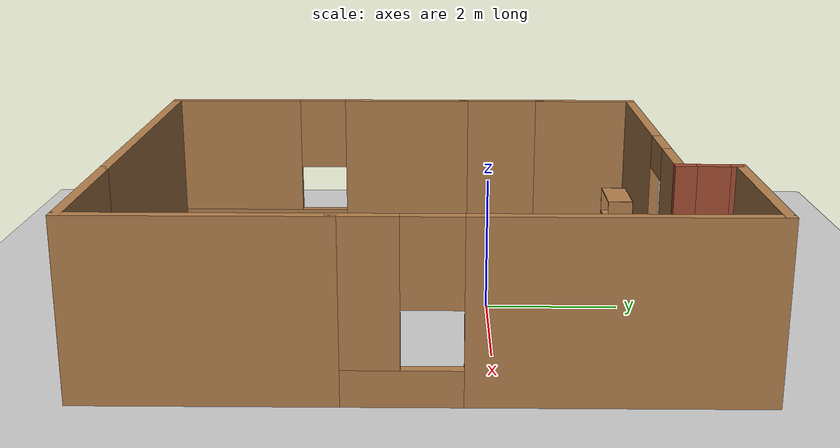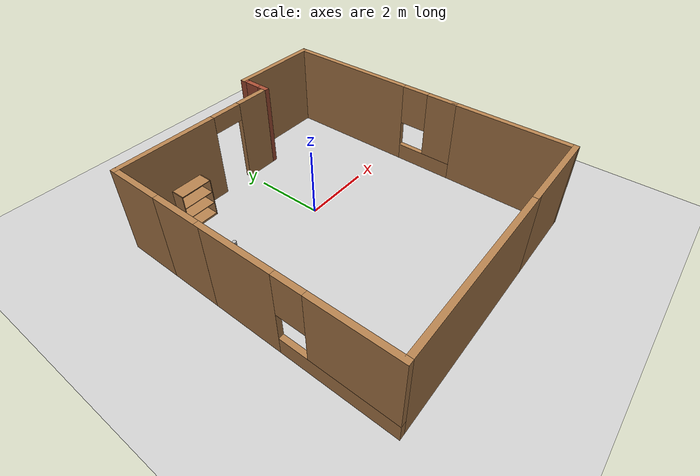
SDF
<sdf version="1.7">
 <world name="default">
  <light name="sun" type="directional">
   <pose>0 0 10 0 -0 0</pose>
   <diffuse>0.8 0.8 0.8 1</diffuse>
   <specular>0.2 0.2 0.2 1</specular>
   <attenuation>
    <range>1000</range>
    <constant>0.9</constant>
    <linear>0.01</linear>
    <quadratic>0.001</quadratic>
   </attenuation>
   <direction>-0.5 0.1 -0.9</direction>
   <spot><inner_angle>0</inner_angle><outer_angle>0</outer_angle><falloff>0</falloff></spot>
  </light>
  <model name="ground_plane">
   <static>1</static>
   <link name="link">
    <collision name="collision">
     <geometry><plane><normal>0 0 1</normal><size>100 100</size></plane></geometry>
     <surface>
      <contact><collide_bitmask>65535</collide_bitmask></contact>
      <friction><ode><mu>100</mu><mu2>50</mu2></ode></friction>
     </surface>
    </collision>
    <visual name="visual">
     <cast_shadows>0</cast_shadows>
     <geometry><plane><normal>0 0 1</normal><size>100 100</size></plane></geometry>
     <material>
      <script><uri>file://media/materials/scripts/gazebo.material</uri><name>Gazebo/Grey</name></script>
     </material>
    </visual>
   </link>
  </model>
  <gravity>0 0 -9.8</gravity>
  <magnetic_field>6e-06 2.3e-05 -4.2e-05</magnetic_field>
  <atmosphere type="adiabatic"/>
  <physics type="ode">
   <max_step_size>0.001</max_step_size>
   <real_time_factor>1</real_time_factor>
   <real_time_update_rate>1000</real_time_update_rate>
  </physics>
  <scene><ambient>0.4 0.4 0.4 1</ambient><background>0.7 0.7 0.7 1</background><shadows>1</shadows></scene>
  <audio><device>default</device></audio>
  <spherical_coordinates>
   <surface_model>EARTH_WGS84</surface_model>
   <latitude_deg>0</latitude_deg>
   <longitude_deg>0</longitude_deg>
   <elevation>0</elevation>
   <heading_deg>0</heading_deg>
  </spherical_coordinates>
  <model name="test">
   <pose>-0.085 -0.95 0 0 -0 0</pose>
   <link name="Wall_0">
    <pose>-3.725 -1.9 0 0 -0 -1.5708</pose>
    <visual name="Wall_0_Visual_0">
     <pose>-1.53489 0 1.25 0 -0 0</pose>
     <geometry><box><size>2.18022 0.15 2.5</size></box></geometry>
     <material>
      <script><uri>file://media/materials/scripts/gazebo.material</uri><name>Gazebo/Wood</name></script>
      <ambient>1 1 1 1</ambient>
     </material>
     <meta><layer>0</layer></meta>
    </visual>
    <collision name="Wall_0_Collision_0">
     <geometry><box><size>2.18022 0.15 2.5</size></box></geometry>
     <pose>-1.53489 0 1.25 0 -0 0</pose>
    </collision>
    <visual name="Wall_0_Visual_1">
     <pose>1.09011 0 0.25 0 -0 0</pose>
     <geometry><box><size>3.06978 0.15 0.5</size></box></geometry>
     <material>
      <script><uri>file://media/materials/scripts/gazebo.material</uri><name>Gazebo/Wood</name></script>
      <ambient>1 1 1 1</ambient>
     </material>
     <meta><layer>0</layer></meta>
    </visual>
    <collision name="Wall_0_Collision_1">
     <geometry><box><size>3.06978 0.15 0.5</size></box></geometry>
     <pose>1.09011 0 0.25 0 -0 0</pose>
    </collision>
    <visual name="Wall_0_Visual_2">
     <pose>1.49011 0 1.5 0 -0 0</pose>
     <geometry><box><size>2.26978 0.15 2</size></box></geometry>
     <material>
      <script><uri>file://media/materials/scripts/gazebo.material</uri><name>Gazebo/Wood</name></script>
      <ambient>1 1 1 1</ambient>
     </material>
     <meta><layer>0</layer></meta>
    </visual>
    <collision name="Wall_0_Collision_2">
     <geometry><box><size>2.26978 0.15 2</size></box></geometry>
     <pose>1.49011 0 1.5 0 -0 0</pose>
    </collision>
    <visual name="Wall_0_Visual_3">
     <pose>-0.044782 0 1.9 0 -0 0</pose>
     <geometry><box><size>0.8 0.15 1.2</size></box></geometry>
     <material>
      <script><uri>file://media/materials/scripts/gazebo.material</uri><name>Gazebo/Wood</name></script>
      <ambient>1 1 1 1</ambient>
     </material>
     <meta><layer>0</layer></meta>
    </visual>
    <collision name="Wall_0_Collision_3">
     <geometry><box><size>0.8 0.15 1.2</size></box></geometry>
     <pose>-0.044782 0 1.9 0 -0 0</pose>
    </collision>
   </link>
   <link name="Wall_1">
    <collision name="Wall_1_Collision">
     <geometry><box><size>5.25 0.15 2.5</size></box></geometry>
     <pose>0 0 1.25 0 -0 0</pose>
    </collision>
    <visual name="Wall_1_Visual">
     <pose>0 0 1.25 0 -0 0</pose>
     <geometry><box><size>5.25 0.15 2.5</size></box></geometry>
     <material>
      <script><uri>file://media/materials/scripts/gazebo.material</uri><name>Gazebo/Wood</name></script>
      <ambient>1 1 1 1</ambient>
     </material>
     <meta><layer>0</layer></meta>
    </visual>
    <pose>-1.175 -4.45 0 0 -0 0</pose>
   </link>
   <link name="Wall_10">
    <pose>1.125 4.025 0 0 -0 1.5708</pose>
    <visual name="Wall_10_Visual_0">
     <pose>-0.345109 0 1.25 0 -0 0</pose>
     <geometry><box><size>0.309783 0.15 2.5</size></box></geometry>
     <material>
      <script><uri>file://media/materials/scripts/gazebo.material</uri><name>Gazebo/Bricks</name></script>
      <ambient>1 1 1 1</ambient>
     </material>
     <meta><layer>0</layer></meta>
    </visual>
    <collision name="Wall_10_Collision_0">
     <geometry><box><size>0.309783 0.15 2.5</size></box></geometry>
     <pose>-0.345109 0 1.25 0 -0 0</pose>
    </collision>
    <visual name="Wall_10_Visual_1">
     <pose>0.154891 0 0.25 0 -0 0</pose>
     <geometry><box><size>0.690217 0.15 0.5</size></box></geometry>
     <material>
      <script><uri>file://media/materials/scripts/gazebo.material</uri><name>Gazebo/Bricks</name></script>
      <ambient>1 1 1 1</ambient>
     </material>
     <meta><layer>0</layer></meta>
    </visual>
    <collision name="Wall_10_Collision_1">
     <geometry><box><size>0.690217 0.15 0.5</size></box></geometry>
     <pose>0.154891 0 0.25 0 -0 0</pose>
    </collision>
    <visual name="Wall_10_Visual_2">
     <pose>0.389891 0 1.5 0 -0 0</pose>
     <geometry><box><size>0.220217 0.15 2</size></box></geometry>
     <material>
      <script><uri>file://media/materials/scripts/gazebo.material</uri><name>Gazebo/Bricks</name></script>
      <ambient>1 1 1 1</ambient>
     </material>
     <meta><layer>0</layer></meta>
    </visual>
    <collision name="Wall_10_Collision_2">
     <geometry><box><size>0.220217 0.15 2</size></box></geometry>
     <pose>0.389891 0 1.5 0 -0 0</pose>
    </collision>
    <visual name="Wall_10_Visual_3">
     <pose>0.044783 0 1.9 0 -0 0</pose>
     <geometry><box><size>0.47 0.15 1.2</size></box></geometry>
     <material>
      <script><uri>file://media/materials/scripts/gazebo.material</uri><name>Gazebo/Bricks</name></script>
      <ambient>1 1 1 1</ambient>
     </material>
     <meta><layer>0</layer></meta>
    </visual>
    <collision name="Wall_10_Collision_3">
     <geometry><box><size>0.47 0.15 1.2</size></box></geometry>
     <pose>0.044783 0 1.9 0 -0 0</pose>
    </collision>
   </link>
   <link name="Wall_11">
    <collision name="Wall_11_Collision">
     <geometry><box><size>2.75 0.15 2.5</size></box></geometry>
     <pose>0 0 1.25 0 -0 0</pose>
    </collision>
    <visual name="Wall_11_Visual">
     <pose>0 0 1.25 0 -0 0</pose>
     <geometry><box><size>2.75 0.15 2.5</size></box></geometry>
     <material>
      <script><uri>file://media/materials/scripts/gazebo.material</uri><name>Gazebo/Wood</name></script>
      <ambient>1 1 1 1</ambient>
     </material>
     <meta><layer>0</layer></meta>
    </visual>
    <pose>2.425 4.45 0 0 -0 0</pose>
   </link>
   <link name="Wall_12">
    <pose>3.725 1.675 0 0 -0 -1.5708</pose>
    <visual name="Wall_12_Visual_0">
     <pose>-0.857391 0 1.25 0 -0 0</pose>
     <geometry><box><size>3.98522 0.15 2.5</size></box></geometry>
     <material>
      <script><uri>file://media/materials/scripts/gazebo.material</uri><name>Gazebo/Wood</name></script>
      <ambient>1 1 1 1</ambient>
     </material>
     <meta><layer>0</layer></meta>
    </visual>
    <collision name="Wall_12_Collision_0">
     <geometry><box><size>3.98522 0.15 2.5</size></box></geometry>
     <pose>-0.857391 0 1.25 0 -0 0</pose>
    </collision>
    <visual name="Wall_12_Visual_1">
     <pose>1.99261 0 0.25 0 -0 0</pose>
     <geometry><box><size>1.71478 0.15 0.5</size></box></geometry>
     <material>
      <script><uri>file://media/materials/scripts/gazebo.material</uri><name>Gazebo/Wood</name></script>
      <ambient>1 1 1 1</ambient>
     </material>
     <meta><layer>0</layer></meta>
    </visual>
    <collision name="Wall_12_Collision_1">
     <geometry><box><size>1.71478 0.15 0.5</size></box></geometry>
     <pose>1.99261 0 0.25 0 -0 0</pose>
    </collision>
    <visual name="Wall_12_Visual_2">
     <pose>2.39261 0 1.5 0 -0 0</pose>
     <geometry><box><size>0.914783 0.15 2</size></box></geometry>
     <material>
      <script><uri>file://media/materials/scripts/gazebo.material</uri><name>Gazebo/Wood</name></script>
      <ambient>1 1 1 1</ambient>
     </material>
     <meta><layer>0</layer></meta>
    </visual>
    <collision name="Wall_12_Collision_2">
     <geometry><box><size>0.914783 0.15 2</size></box></geometry>
     <pose>2.39261 0 1.5 0 -0 0</pose>
    </collision>
    <visual name="Wall_12_Visual_3">
     <pose>1.53522 0 1.9 0 -0 0</pose>
     <geometry><box><size>0.8 0.15 1.2</size></box></geometry>
     <material>
      <script><uri>file://media/materials/scripts/gazebo.material</uri><name>Gazebo/Wood</name></script>
      <ambient>1 1 1 1</ambient>
     </material>
     <meta><layer>0</layer></meta>
    </visual>
    <collision name="Wall_12_Collision_3">
     <geometry><box><size>0.8 0.15 1.2</size></box></geometry>
     <pose>1.53522 0 1.9 0 -0 0</pose>
    </collision>
   </link>
   <link name="Wall_2">
    <collision name="Wall_2_Collision">
     <geometry><box><size>2.5 0.15 2.5</size></box></geometry>
     <pose>0 0 1.25 0 -0 0</pose>
    </collision>
    <visual name="Wall_2_Visual">
     <pose>0 0 1.25 0 -0 0</pose>
     <geometry><box><size>2.5 0.15 2.5</size></box></geometry>
     <material>
      <script><uri>file://media/materials/scripts/gazebo.material</uri><name>Gazebo/Wood</name></script>
      <ambient>1 1 1 1</ambient>
     </material>
     <meta><layer>0</layer></meta>
    </visual>
    <pose>2.55 -4.45 0 0 -0 0</pose>
   </link>
   <link name="Wall_3">
    <collision name="Wall_3_Collision">
     <geometry><box><size>3.5 0.15 2.5</size></box></geometry>
     <pose>0 0 1.25 0 -0 0</pose>
    </collision>
    <visual name="Wall_3_Visual">
     <pose>0 0 1.25 0 -0 0</pose>
     <geometry><box><size>3.5 0.15 2.5</size></box></geometry>
     <material>
      <script><uri>file://media/materials/scripts/gazebo.material</uri><name>Gazebo/Wood</name></script>
      <ambient>1 1 1 1</ambient>
     </material>
     <meta><layer>0</layer></meta>
    </visual>
    <pose>3.725 -2.775 0 0 -0 1.5708</pose>
   </link>
   <link name="Wall_6">
    <collision name="Wall_6_Collision">
     <geometry><box><size>1.5 0.15 2.5</size></box></geometry>
     <pose>0 0 1.25 0 -0 0</pose>
    </collision>
    <visual name="Wall_6_Visual">
     <pose>0 0 1.25 0 -0 0</pose>
     <geometry><box><size>1.5 0.15 2.5</size></box></geometry>
     <material>
      <script><uri>file://media/materials/scripts/gazebo.material</uri><name>Gazebo/Wood</name></script>
      <ambient>1 1 1 1</ambient>
     </material>
     <meta><layer>0</layer></meta>
    </visual>
    <pose>-3.725 1.325 0 0 -0 1.5708</pose>
   </link>
   <link name="Wall_8">
    <collision name="Wall_8_Collision">
     <geometry><box><size>1.75 0.15 2.5</size></box></geometry>
     <pose>0 0 1.25 0 -0 0</pose>
    </collision>
    <visual name="Wall_8_Visual">
     <pose>0 0 1.25 0 -0 0</pose>
     <geometry><box><size>1.75 0.15 2.5</size></box></geometry>
     <material>
      <script><uri>file://media/materials/scripts/gazebo.material</uri><name>Gazebo/Wood</name></script>
      <ambient>1 1 1 1</ambient>
     </material>
     <meta><layer>0</layer></meta>
    </visual>
    <pose>-3.725 2.8 0 0 -0 1.5708</pose>
   </link>
   <link name="Wall_9">
    <pose>-1.3 3.6 0 0 -0 0</pose>
    <visual name="Wall_9_Visual_0">
     <pose>-1.01375 0 1.25 0 -0 0</pose>
     <geometry><box><size>2.9725 0.15 2.5</size></box></geometry>
     <material>
      <script><uri>file://media/materials/scripts/gazebo.material</uri><name>Gazebo/Wood</name></script>
      <ambient>1 1 1 1</ambient>
     </material>
     <meta><layer>0</layer></meta>
    </visual>
    <collision name="Wall_9_Collision_0">
     <geometry><box><size>2.9725 0.15 2.5</size></box></geometry>
     <pose>-1.01375 0 1.25 0 -0 0</pose>
    </collision>
    <visual name="Wall_9_Visual_1">
     <pose>1.93625 0 1.25 0 -0 0</pose>
     <geometry><box><size>1.1275 0.15 2.5</size></box></geometry>
     <material>
      <script><uri>file://media/materials/scripts/gazebo.material</uri><name>Gazebo/Wood</name></script>
      <ambient>1 1 1 1</ambient>
     </material>
     <meta><layer>0</layer></meta>
    </visual>
    <collision name="Wall_9_Collision_1">
     <geometry><box><size>1.1275 0.15 2.5</size></box></geometry>
     <pose>1.93625 0 1.25 0 -0 0</pose>
    </collision>
    <visual name="Wall_9_Visual_2">
     <pose>0.9225 0 2.25 0 -0 0</pose>
     <geometry><box><size>0.9 0.15 0.5</size></box></geometry>
     <material>
      <script><uri>file://media/materials/scripts/gazebo.material</uri><name>Gazebo/Wood</name></script>
      <ambient>1 1 1 1</ambient>
     </material>
     <meta><layer>0</layer></meta>
    </visual>
    <collision name="Wall_9_Collision_2">
     <geometry><box><size>0.9 0.15 0.5</size></box></geometry>
     <pose>0.9225 0 2.25 0 -0 0</pose>
    </collision>
   </link>
   <static>1</static>
  </model>
  <model name="beer">
   <link name="link">
    <pose>0 0 0.115 0 -0 0</pose>
    <inertial>
     <mass>0.39</mass>
     <inertia><ixx>0.00058</ixx><ixy>0</ixy><ixz>0</ixz><iyy>0.00058</iyy><iyz>0</iyz><izz>0.00019</izz></inertia>
    </inertial>
    <collision name="collision">
     <geometry><cylinder><radius>0.055</radius><length>0.23</length></cylinder></geometry>
    </collision>
    <visual name="visual">
     <geometry><cylinder><radius>0.055</radius><length>0.23</length></cylinder></geometry>
     <material>
      <script>
       <uri>model://beer/materials/scripts</uri>
       <uri>model://beer/materials/textures</uri>
       <name>Beer/Diffuse</name>
      </script>
     </material>
    </visual>
   </link>
   <pose>-2.35254 0.685787 -7e-06 -1e-06 -0 -5e-06</pose>
  </model>
  <model name="bookshelf">
   <static>1</static>
   <link name="link">
    <inertial><mass>1</mass></inertial>
    <collision name="back">
     <pose>0 0.005 0.6 0 -0 0</pose>
     <geometry><box><size>0.9 0.01 1.2</size></box></geometry>
    </collision>
    <visual name="visual1">
     <pose>0 0.005 0.6 0 -0 0</pose>
     <geometry><box><size>0.9 0.01 1.2</size></box></geometry>
     <material>
      <script><uri>file://media/materials/scripts/gazebo.material</uri><name>Gazebo/Wood</name></script>
     </material>
    </visual>
    <collision name="left_side">
     <pose>0.45 -0.195 0.6 0 -0 0</pose>
     <geometry><box><size>0.02 0.4 1.2</size></box></geometry>
    </collision>
    <visual name="visual2">
     <pose>0.45 -0.195 0.6 0 -0 0</pose>
     <geometry><box><size>0.02 0.4 1.2</size></box></geometry>
     <material>
      <script><uri>file://media/materials/scripts/gazebo.material</uri><name>Gazebo/Wood</name></script>
     </material>
    </visual>
    <collision name="right_side">
     <pose>-0.45 -0.195 0.6 0 -0 0</pose>
     <geometry><box><size>0.02 0.4 1.2</size></box></geometry>
    </collision>
    <visual name="visual3">
     <pose>-0.45 -0.195 0.6 0 -0 0</pose>
     <geometry><box><size>0.02 0.4 1.2</size></box></geometry>
     <material>
      <script><uri>file://media/materials/scripts/gazebo.material</uri><name>Gazebo/Wood</name></script>
     </material>
    </visual>
    <collision name="bottom">
     <pose>0 -0.195 0.03 0 -0 0</pose>
     <geometry><box><size>0.88 0.4 0.06</size></box></geometry>
    </collision>
    <visual name="visual4">
     <pose>0 -0.195 0.03 0 -0 0</pose>
     <geometry><box><size>0.88 0.4 0.06</size></box></geometry>
     <material>
      <script><uri>file://media/materials/scripts/gazebo.material</uri><name>Gazebo/Wood</name></script>
     </material>
    </visual>
    <collision name="top">
     <pose>0 -0.195 1.19 0 -0 0</pose>
     <geometry><box><size>0.88 0.4 0.02</size></box></geometry>
    </collision>
    <visual name="visual5">
     <pose>0 -0.195 1.19 0 -0 0</pose>
     <geometry><box><size>0.88 0.4 0.02</size></box></geometry>
     <material>
      <script><uri>file://media/materials/scripts/gazebo.material</uri><name>Gazebo/Wood</name></script>
     </material>
    </visual>
    <collision name="low_shelf">
     <pose>0 -0.195 0.43 0 -0 0</pose>
     <geometry><box><size>0.88 0.4 0.02</size></box></geometry>
    </collision>
    <visual name="visual6">
     <pose>0 -0.195 0.43 0 -0 0</pose>
     <geometry><box><size>0.88 0.4 0.02</size></box></geometry>
     <material>
      <script><uri>file://media/materials/scripts/gazebo.material</uri><name>Gazebo/Wood</name></script>
     </material>
    </visual>
    <collision name="high_shelf">
     <pose>0 -0.195 0.8 0 -0 0</pose>
     <geometry><box><size>0.88 0.4 0.02</size></box></geometry>
    </collision>
    <visual name="visual7">
     <pose>0 -0.195 0.8 0 -0 0</pose>
     <geometry><box><size>0.88 0.4 0.02</size></box></geometry>
     <material>
      <script><uri>file://media/materials/scripts/gazebo.material</uri><name>Gazebo/Wood</name></script>
     </material>
    </visual>
   </link>
   <pose>-2.21841 2.46029 0 0 -0 0</pose>
  </model>
 </world>
</sdf>
